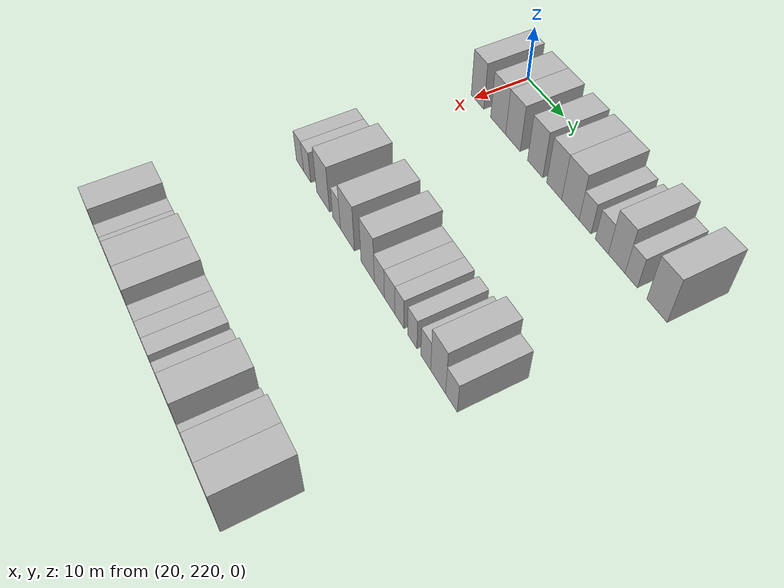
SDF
<sdf version="1.6">
 <world name="default">
  <model name="building_177">
   <static>1</static>
   <pose>25.0000 220.9204 0 0.000000 0.000000 0.000000</pose>
   <link name="link">
    <pose>0 0 4.50 0 0 0</pose>
    <collision name="collision"><geometry><box><size>10.0000 3.8029 9.0000</size></box></geometry></collision>
    <visual name="visual">
     <cast_shadows>0</cast_shadows>
     <geometry><box><size>10.0000 3.8029 9.0000</size></box></geometry>
     <material>
      <script>
       <uri>model://HANNAS_wall/materials/scripts</uri>
       <uri>model://HANNAS_wall/materials/textures</uri>
       <name>vrc/HANNAS_wall</name>
      </script>
     </material>
    </visual>
   </link>
  </model>
  <model name="building_178">
   <static>1</static>
   <pose>25.0000 226.9856 0 0.000000 0.000000 0.000000</pose>
   <link name="link">
    <pose>0 0 4.50 0 0 0</pose>
    <collision name="collision"><geometry><box><size>10.0000 4.3275 9.0000</size></box></geometry></collision>
    <visual name="visual">
     <cast_shadows>0</cast_shadows>
     <geometry><box><size>10.0000 4.3275 9.0000</size></box></geometry>
     <material>
      <script>
       <uri>model://HANNAS_wall/materials/scripts</uri>
       <uri>model://HANNAS_wall/materials/textures</uri>
       <name>vrc/HANNAS_wall</name>
      </script>
     </material>
    </visual>
   </link>
  </model>
  <model name="building_179">
   <static>1</static>
   <pose>25.0000 231.1897 0 0.000000 0.000000 0.000000</pose>
   <link name="link">
    <pose>0 0 4.50 0 0 0</pose>
    <collision name="collision"><geometry><box><size>10.0000 4.0806 9.0000</size></box></geometry></collision>
    <visual name="visual">
     <cast_shadows>0</cast_shadows>
     <geometry><box><size>10.0000 4.0806 9.0000</size></box></geometry>
     <material>
      <script>
       <uri>model://HANNAS_wall/materials/scripts</uri>
       <uri>model://HANNAS_wall/materials/textures</uri>
       <name>vrc/HANNAS_wall</name>
      </script>
     </material>
    </visual>
   </link>
  </model>
  <model name="building_180">
   <static>1</static>
   <pose>25.0000 237.2449 0 0.000000 0.000000 0.000000</pose>
   <link name="link">
    <pose>0 0 4.50 0 0 0</pose>
    <collision name="collision"><geometry><box><size>10.0000 4.0298 9.0000</size></box></geometry></collision>
    <visual name="visual">
     <cast_shadows>0</cast_shadows>
     <geometry><box><size>10.0000 4.0298 9.0000</size></box></geometry>
     <material>
      <script>
       <uri>model://HANNAS_wall/materials/scripts</uri>
       <uri>model://HANNAS_wall/materials/textures</uri>
       <name>vrc/HANNAS_wall</name>
      </script>
     </material>
    </visual>
   </link>
  </model>
  <model name="building_181">
   <static>1</static>
   <pose>25.0000 242.1710 0 0.000000 0.000000 0.000000</pose>
   <link name="link">
    <pose>0 0 4.50 0 0 0</pose>
    <collision name="collision"><geometry><box><size>10.0000 3.8224 9.0000</size></box></geometry></collision>
    <visual name="visual">
     <cast_shadows>0</cast_shadows>
     <geometry><box><size>10.0000 3.8224 9.0000</size></box></geometry>
     <material>
      <script>
       <uri>model://HANNAS_wall/materials/scripts</uri>
       <uri>model://HANNAS_wall/materials/textures</uri>
       <name>vrc/HANNAS_wall</name>
      </script>
     </material>
    </visual>
   </link>
  </model>
  <model name="building_182">
   <static>1</static>
   <pose>25.0000 246.2288 0 0.000000 0.000000 0.000000</pose>
   <link name="link">
    <pose>0 0 4.50 0 0 0</pose>
    <collision name="collision"><geometry><box><size>10.0000 4.2931 9.0000</size></box></geometry></collision>
    <visual name="visual">
     <cast_shadows>0</cast_shadows>
     <geometry><box><size>10.0000 4.2931 9.0000</size></box></geometry>
     <material>
      <script>
       <uri>model://HANNAS_wall/materials/scripts</uri>
       <uri>model://HANNAS_wall/materials/textures</uri>
       <name>vrc/HANNAS_wall</name>
      </script>
     </material>
    </visual>
   </link>
  </model>
  <model name="building_183">
   <static>1</static>
   <pose>25.0000 249.7904 0 0.000000 0.000000 0.000000</pose>
   <link name="link">
    <pose>0 0 3.00 0 0 0</pose>
    <collision name="collision"><geometry><box><size>10.0000 2.8302 6.0000</size></box></geometry></collision>
    <visual name="visual">
     <cast_shadows>0</cast_shadows>
     <geometry><box><size>10.0000 2.8302 6.0000</size></box></geometry>
     <material>
      <script>
       <uri>model://HANNAS_wall/materials/scripts</uri>
       <uri>model://HANNAS_wall/materials/textures</uri>
       <name>vrc/HANNAS_wall</name>
      </script>
     </material>
    </visual>
   </link>
  </model>
  <model name="building_184">
   <static>1</static>
   <pose>25.0000 253.6952 0 0.000000 0.000000 0.000000</pose>
   <link name="link">
    <pose>0 0 3.00 0 0 0</pose>
    <collision name="collision"><geometry><box><size>10.0000 2.9796 6.0000</size></box></geometry></collision>
    <visual name="visual">
     <cast_shadows>0</cast_shadows>
     <geometry><box><size>10.0000 2.9796 6.0000</size></box></geometry>
     <material>
      <script>
       <uri>model://HANNAS_wall/materials/scripts</uri>
       <uri>model://HANNAS_wall/materials/textures</uri>
       <name>vrc/HANNAS_wall</name>
      </script>
     </material>
    </visual>
   </link>
  </model>
  <model name="building_185">
   <static>1</static>
   <pose>25.0000 257.0476 0 0.000000 0.000000 0.000000</pose>
   <link name="link">
    <pose>0 0 4.50 0 0 0</pose>
    <collision name="collision"><geometry><box><size>10.0000 3.7251 9.0000</size></box></geometry></collision>
    <visual name="visual">
     <cast_shadows>0</cast_shadows>
     <geometry><box><size>10.0000 3.7251 9.0000</size></box></geometry>
     <material>
      <script>
       <uri>model://HANNAS_wall/materials/scripts</uri>
       <uri>model://HANNAS_wall/materials/textures</uri>
       <name>vrc/HANNAS_wall</name>
      </script>
     </material>
    </visual>
   </link>
  </model>
  <model name="building_186">
   <static>1</static>
   <pose>25.0000 260.2636 0 0.000000 0.000000 0.000000</pose>
   <link name="link">
    <pose>0 0 3.00 0 0 0</pose>
    <collision name="collision"><geometry><box><size>10.0000 2.7068 6.0000</size></box></geometry></collision>
    <visual name="visual">
     <cast_shadows>0</cast_shadows>
     <geometry><box><size>10.0000 2.7068 6.0000</size></box></geometry>
     <material>
      <script>
       <uri>model://HANNAS_wall/materials/scripts</uri>
       <uri>model://HANNAS_wall/materials/textures</uri>
       <name>vrc/HANNAS_wall</name>
      </script>
     </material>
    </visual>
   </link>
  </model>
  <model name="building_187">
   <static>1</static>
   <pose>25.0000 265.7108 0 0.000000 0.000000 0.000000</pose>
   <link name="link">
    <pose>0 0 4.50 0 0 0</pose>
    <collision name="collision"><geometry><box><size>10.0000 4.1877 9.0000</size></box></geometry></collision>
    <visual name="visual">
     <cast_shadows>0</cast_shadows>
     <geometry><box><size>10.0000 4.1877 9.0000</size></box></geometry>
     <material>
      <script>
       <uri>model://HANNAS_wall/materials/scripts</uri>
       <uri>model://HANNAS_wall/materials/textures</uri>
       <name>vrc/HANNAS_wall</name>
      </script>
     </material>
    </visual>
   </link>
  </model>
  <model name="building_417">
   <static>1</static>
   <pose>55.0000 220.5504 0 0.000000 0.000000 0.000000</pose>
   <link name="link">
    <pose>0 0 3.00 0 0 0</pose>
    <collision name="collision"><geometry><box><size>10.0000 2.5222 6.0000</size></box></geometry></collision>
    <visual name="visual">
     <cast_shadows>0</cast_shadows>
     <geometry><box><size>10.0000 2.5222 6.0000</size></box></geometry>
     <material>
      <script>
       <uri>model://HANNAS_wall/materials/scripts</uri>
       <uri>model://HANNAS_wall/materials/textures</uri>
       <name>vrc/HANNAS_wall</name>
      </script>
     </material>
    </visual>
   </link>
  </model>
  <model name="building_418">
   <static>1</static>
   <pose>55.0000 223.0967 0 0.000000 0.000000 0.000000</pose>
   <link name="link">
    <pose>0 0 3.00 0 0 0</pose>
    <collision name="collision"><geometry><box><size>10.0000 2.5703 6.0000</size></box></geometry></collision>
    <visual name="visual">
     <cast_shadows>0</cast_shadows>
     <geometry><box><size>10.0000 2.5703 6.0000</size></box></geometry>
     <material>
      <script>
       <uri>model://HANNAS_wall/materials/scripts</uri>
       <uri>model://HANNAS_wall/materials/textures</uri>
       <name>vrc/HANNAS_wall</name>
      </script>
     </material>
    </visual>
   </link>
  </model>
  <model name="building_419">
   <static>1</static>
   <pose>55.0000 228.5635 0 0.000000 0.000000 0.000000</pose>
   <link name="link">
    <pose>0 0 4.50 0 0 0</pose>
    <collision name="collision"><geometry><box><size>10.0000 4.3633 9.0000</size></box></geometry></collision>
    <visual name="visual">
     <cast_shadows>0</cast_shadows>
     <geometry><box><size>10.0000 4.3633 9.0000</size></box></geometry>
     <material>
      <script>
       <uri>model://HANNAS_wall/materials/scripts</uri>
       <uri>model://HANNAS_wall/materials/textures</uri>
       <name>vrc/HANNAS_wall</name>
      </script>
     </material>
    </visual>
   </link>
  </model>
  <model name="building_420">
   <static>1</static>
   <pose>55.0000 232.9952 0 0.000000 0.000000 0.000000</pose>
   <link name="link">
    <pose>0 0 3.00 0 0 0</pose>
    <collision name="collision"><geometry><box><size>10.0000 2.5002 6.0000</size></box></geometry></collision>
    <visual name="visual">
     <cast_shadows>0</cast_shadows>
     <geometry><box><size>10.0000 2.5002 6.0000</size></box></geometry>
     <material>
      <script>
       <uri>model://HANNAS_wall/materials/scripts</uri>
       <uri>model://HANNAS_wall/materials/textures</uri>
       <name>vrc/HANNAS_wall</name>
      </script>
     </material>
    </visual>
   </link>
  </model>
  <model name="building_421">
   <static>1</static>
   <pose>55.0000 236.4503 0 0.000000 0.000000 0.000000</pose>
   <link name="link">
    <pose>0 0 4.50 0 0 0</pose>
    <collision name="collision"><geometry><box><size>10.0000 4.4100 9.0000</size></box></geometry></collision>
    <visual name="visual">
     <cast_shadows>0</cast_shadows>
     <geometry><box><size>10.0000 4.4100 9.0000</size></box></geometry>
     <material>
      <script>
       <uri>model://HANNAS_wall/materials/scripts</uri>
       <uri>model://HANNAS_wall/materials/textures</uri>
       <name>vrc/HANNAS_wall</name>
      </script>
     </material>
    </visual>
   </link>
  </model>
  <model name="building_422">
   <static>1</static>
   <pose>55.0000 242.6285 0 0.000000 0.000000 0.000000</pose>
   <link name="link">
    <pose>0 0 4.50 0 0 0</pose>
    <collision name="collision"><geometry><box><size>10.0000 3.9464 9.0000</size></box></geometry></collision>
    <visual name="visual">
     <cast_shadows>0</cast_shadows>
     <geometry><box><size>10.0000 3.9464 9.0000</size></box></geometry>
     <material>
      <script>
       <uri>model://HANNAS_wall/materials/scripts</uri>
       <uri>model://HANNAS_wall/materials/textures</uri>
       <name>vrc/HANNAS_wall</name>
      </script>
     </material>
    </visual>
   </link>
  </model>
  <model name="building_423">
   <static>1</static>
   <pose>55.0000 246.0341 0 0.000000 0.000000 0.000000</pose>
   <link name="link">
    <pose>0 0 3.00 0 0 0</pose>
    <collision name="collision"><geometry><box><size>10.0000 2.8647 6.0000</size></box></geometry></collision>
    <visual name="visual">
     <cast_shadows>0</cast_shadows>
     <geometry><box><size>10.0000 2.8647 6.0000</size></box></geometry>
     <material>
      <script>
       <uri>model://HANNAS_wall/materials/scripts</uri>
       <uri>model://HANNAS_wall/materials/textures</uri>
       <name>vrc/HANNAS_wall</name>
      </script>
     </material>
    </visual>
   </link>
  </model>
  <model name="building_424">
   <static>1</static>
   <pose>55.0000 248.9469 0 0.000000 0.000000 0.000000</pose>
   <link name="link">
    <pose>0 0 3.00 0 0 0</pose>
    <collision name="collision"><geometry><box><size>10.0000 2.9608 6.0000</size></box></geometry></collision>
    <visual name="visual">
     <cast_shadows>0</cast_shadows>
     <geometry><box><size>10.0000 2.9608 6.0000</size></box></geometry>
     <material>
      <script>
       <uri>model://HANNAS_wall/materials/scripts</uri>
       <uri>model://HANNAS_wall/materials/textures</uri>
       <name>vrc/HANNAS_wall</name>
      </script>
     </material>
    </visual>
   </link>
  </model>
  <model name="building_425">
   <static>1</static>
   <pose>55.0000 251.6619 0 0.000000 0.000000 0.000000</pose>
   <link name="link">
    <pose>0 0 3.00 0 0 0</pose>
    <collision name="collision"><geometry><box><size>10.0000 2.4691 6.0000</size></box></geometry></collision>
    <visual name="visual">
     <cast_shadows>0</cast_shadows>
     <geometry><box><size>10.0000 2.4691 6.0000</size></box></geometry>
     <material>
      <script>
       <uri>model://HANNAS_wall/materials/scripts</uri>
       <uri>model://HANNAS_wall/materials/textures</uri>
       <name>vrc/HANNAS_wall</name>
      </script>
     </material>
    </visual>
   </link>
  </model>
  <model name="building_426">
   <static>1</static>
   <pose>55.0000 255.1031 0 0.000000 0.000000 0.000000</pose>
   <link name="link">
    <pose>0 0 3.00 0 0 0</pose>
    <collision name="collision"><geometry><box><size>10.0000 2.4134 6.0000</size></box></geometry></collision>
    <visual name="visual">
     <cast_shadows>0</cast_shadows>
     <geometry><box><size>10.0000 2.4134 6.0000</size></box></geometry>
     <material>
      <script>
       <uri>model://HANNAS_wall/materials/scripts</uri>
       <uri>model://HANNAS_wall/materials/textures</uri>
       <name>vrc/HANNAS_wall</name>
      </script>
     </material>
    </visual>
   </link>
  </model>
  <model name="building_427">
   <static>1</static>
   <pose>55.0000 258.5602 0 0.000000 0.000000 0.000000</pose>
   <link name="link">
    <pose>0 0 3.00 0 0 0</pose>
    <collision name="collision"><geometry><box><size>10.0000 2.5009 6.0000</size></box></geometry></collision>
    <visual name="visual">
     <cast_shadows>0</cast_shadows>
     <geometry><box><size>10.0000 2.5009 6.0000</size></box></geometry>
     <material>
      <script>
       <uri>model://HANNAS_wall/materials/scripts</uri>
       <uri>model://HANNAS_wall/materials/textures</uri>
       <name>vrc/HANNAS_wall</name>
      </script>
     </material>
    </visual>
   </link>
  </model>
  <model name="building_428">
   <static>1</static>
   <pose>55.0000 261.6528 0 0.000000 0.000000 0.000000</pose>
   <link name="link">
    <pose>0 0 4.50 0 0 0</pose>
    <collision name="collision"><geometry><box><size>10.0000 3.6841 9.0000</size></box></geometry></collision>
    <visual name="visual">
     <cast_shadows>0</cast_shadows>
     <geometry><box><size>10.0000 3.6841 9.0000</size></box></geometry>
     <material>
      <script>
       <uri>model://HANNAS_wall/materials/scripts</uri>
       <uri>model://HANNAS_wall/materials/textures</uri>
       <name>vrc/HANNAS_wall</name>
      </script>
     </material>
    </visual>
   </link>
  </model>
  <model name="building_429">
   <static>1</static>
   <pose>55.0000 264.8965 0 0.000000 0.000000 0.000000</pose>
   <link name="link">
    <pose>0 0 3.00 0 0 0</pose>
    <collision name="collision"><geometry><box><size>10.0000 2.8034 6.0000</size></box></geometry></collision>
    <visual name="visual">
     <cast_shadows>0</cast_shadows>
     <geometry><box><size>10.0000 2.8034 6.0000</size></box></geometry>
     <material>
      <script>
       <uri>model://HANNAS_wall/materials/scripts</uri>
       <uri>model://HANNAS_wall/materials/textures</uri>
       <name>vrc/HANNAS_wall</name>
      </script>
     </material>
    </visual>
   </link>
  </model>
  <model name="building_655">
   <static>1</static>
   <pose>85.0000 220.9758 0 0.000000 0.000000 0.000000</pose>
   <link name="link">
    <pose>0 0 4.50 0 0 0</pose>
    <collision name="collision"><geometry><box><size>10.0000 4.3943 9.0000</size></box></geometry></collision>
    <visual name="visual">
     <cast_shadows>0</cast_shadows>
     <geometry><box><size>10.0000 4.3943 9.0000</size></box></geometry>
     <material>
      <script>
       <uri>model://HANNAS_wall/materials/scripts</uri>
       <uri>model://HANNAS_wall/materials/textures</uri>
       <name>vrc/HANNAS_wall</name>
      </script>
     </material>
    </visual>
   </link>
  </model>
  <model name="building_656">
   <static>1</static>
   <pose>85.0000 224.3748 0 0.000000 0.000000 0.000000</pose>
   <link name="link">
    <pose>0 0 3.00 0 0 0</pose>
    <collision name="collision"><geometry><box><size>10.0000 2.4038 6.0000</size></box></geometry></collision>
    <visual name="visual">
     <cast_shadows>0</cast_shadows>
     <geometry><box><size>10.0000 2.4038 6.0000</size></box></geometry>
     <material>
      <script>
       <uri>model://HANNAS_wall/materials/scripts</uri>
       <uri>model://HANNAS_wall/materials/textures</uri>
       <name>vrc/HANNAS_wall</name>
      </script>
     </material>
    </visual>
   </link>
  </model>
  <model name="building_657">
   <static>1</static>
   <pose>85.0000 226.8430 0 0.000000 0.000000 0.000000</pose>
   <link name="link">
    <pose>0 0 3.00 0 0 0</pose>
    <collision name="collision"><geometry><box><size>10.0000 2.5325 6.0000</size></box></geometry></collision>
    <visual name="visual">
     <cast_shadows>0</cast_shadows>
     <geometry><box><size>10.0000 2.5325 6.0000</size></box></geometry>
     <material>
      <script>
       <uri>model://HANNAS_wall/materials/scripts</uri>
       <uri>model://HANNAS_wall/materials/textures</uri>
       <name>vrc/HANNAS_wall</name>
      </script>
     </material>
    </visual>
   </link>
  </model>
  <model name="building_658">
   <static>1</static>
   <pose>85.0000 231.3096 0 0.000000 0.000000 0.000000</pose>
   <link name="link">
    <pose>0 0 4.50 0 0 0</pose>
    <collision name="collision"><geometry><box><size>10.0000 4.4006 9.0000</size></box></geometry></collision>
    <visual name="visual">
     <cast_shadows>0</cast_shadows>
     <geometry><box><size>10.0000 4.4006 9.0000</size></box></geometry>
     <material>
      <script>
       <uri>model://HANNAS_wall/materials/scripts</uri>
       <uri>model://HANNAS_wall/materials/textures</uri>
       <name>vrc/HANNAS_wall</name>
      </script>
     </material>
    </visual>
   </link>
  </model>
  <model name="building_659">
   <static>1</static>
   <pose>85.0000 235.5748 0 0.000000 0.000000 0.000000</pose>
   <link name="link">
    <pose>0 0 4.50 0 0 0</pose>
    <collision name="collision"><geometry><box><size>10.0000 4.1298 9.0000</size></box></geometry></collision>
    <visual name="visual">
     <cast_shadows>0</cast_shadows>
     <geometry><box><size>10.0000 4.1298 9.0000</size></box></geometry>
     <material>
      <script>
       <uri>model://HANNAS_wall/materials/scripts</uri>
       <uri>model://HANNAS_wall/materials/textures</uri>
       <name>vrc/HANNAS_wall</name>
      </script>
     </material>
    </visual>
   </link>
  </model>
  <model name="building_660">
   <static>1</static>
   <pose>85.0000 238.9903 0 0.000000 0.000000 0.000000</pose>
   <link name="link">
    <pose>0 0 3.00 0 0 0</pose>
    <collision name="collision"><geometry><box><size>10.0000 2.7012 6.0000</size></box></geometry></collision>
    <visual name="visual">
     <cast_shadows>0</cast_shadows>
     <geometry><box><size>10.0000 2.7012 6.0000</size></box></geometry>
     <material>
      <script>
       <uri>model://HANNAS_wall/materials/scripts</uri>
       <uri>model://HANNAS_wall/materials/textures</uri>
       <name>vrc/HANNAS_wall</name>
      </script>
     </material>
    </visual>
   </link>
  </model>
  <model name="building_661">
   <static>1</static>
   <pose>85.0000 241.6601 0 0.000000 0.000000 0.000000</pose>
   <link name="link">
    <pose>0 0 3.00 0 0 0</pose>
    <collision name="collision"><geometry><box><size>10.0000 2.6384 6.0000</size></box></geometry></collision>
    <visual name="visual">
     <cast_shadows>0</cast_shadows>
     <geometry><box><size>10.0000 2.6384 6.0000</size></box></geometry>
     <material>
      <script>
       <uri>model://HANNAS_wall/materials/scripts</uri>
       <uri>model://HANNAS_wall/materials/textures</uri>
       <name>vrc/HANNAS_wall</name>
      </script>
     </material>
    </visual>
   </link>
  </model>
  <model name="building_662">
   <static>1</static>
   <pose>85.0000 244.3725 0 0.000000 0.000000 0.000000</pose>
   <link name="link">
    <pose>0 0 3.00 0 0 0</pose>
    <collision name="collision"><geometry><box><size>10.0000 2.7863 6.0000</size></box></geometry></collision>
    <visual name="visual">
     <cast_shadows>0</cast_shadows>
     <geometry><box><size>10.0000 2.7863 6.0000</size></box></geometry>
     <material>
      <script>
       <uri>model://HANNAS_wall/materials/scripts</uri>
       <uri>model://HANNAS_wall/materials/textures</uri>
       <name>vrc/HANNAS_wall</name>
      </script>
     </material>
    </visual>
   </link>
  </model>
  <model name="building_663">
   <static>1</static>
   <pose>85.0000 248.1005 0 0.000000 0.000000 0.000000</pose>
   <link name="link">
    <pose>0 0 3.00 0 0 0</pose>
    <collision name="collision"><geometry><box><size>10.0000 2.6698 6.0000</size></box></geometry></collision>
    <visual name="visual">
     <cast_shadows>0</cast_shadows>
     <geometry><box><size>10.0000 2.6698 6.0000</size></box></geometry>
     <material>
      <script>
       <uri>model://HANNAS_wall/materials/scripts</uri>
       <uri>model://HANNAS_wall/materials/textures</uri>
       <name>vrc/HANNAS_wall</name>
      </script>
     </material>
    </visual>
   </link>
  </model>
  <model name="building_664">
   <static>1</static>
   <pose>85.0000 252.6368 0 0.000000 0.000000 0.000000</pose>
   <link name="link">
    <pose>0 0 4.50 0 0 0</pose>
    <collision name="collision"><geometry><box><size>10.0000 4.4028 9.0000</size></box></geometry></collision>
    <visual name="visual">
     <cast_shadows>0</cast_shadows>
     <geometry><box><size>10.0000 4.4028 9.0000</size></box></geometry>
     <material>
      <script>
       <uri>model://HANNAS_wall/materials/scripts</uri>
       <uri>model://HANNAS_wall/materials/textures</uri>
       <name>vrc/HANNAS_wall</name>
      </script>
     </material>
    </visual>
   </link>
  </model>
  <model name="building_665">
   <static>1</static>
   <pose>85.0000 257.2654 0 0.000000 0.000000 0.000000</pose>
   <link name="link">
    <pose>0 0 3.00 0 0 0</pose>
    <collision name="collision"><geometry><box><size>10.0000 2.8544 6.0000</size></box></geometry></collision>
    <visual name="visual">
     <cast_shadows>0</cast_shadows>
     <geometry><box><size>10.0000 2.8544 6.0000</size></box></geometry>
     <material>
      <script>
       <uri>model://HANNAS_wall/materials/scripts</uri>
       <uri>model://HANNAS_wall/materials/textures</uri>
       <name>vrc/HANNAS_wall</name>
      </script>
     </material>
    </visual>
   </link>
  </model>
  <model name="building_666">
   <static>1</static>
   <pose>85.0000 260.6470 0 0.000000 0.000000 0.000000</pose>
   <link name="link">
    <pose>0 0 4.50 0 0 0</pose>
    <collision name="collision"><geometry><box><size>10.0000 3.9089 9.0000</size></box></geometry></collision>
    <visual name="visual">
     <cast_shadows>0</cast_shadows>
     <geometry><box><size>10.0000 3.9089 9.0000</size></box></geometry>
     <material>
      <script>
       <uri>model://HANNAS_wall/materials/scripts</uri>
       <uri>model://HANNAS_wall/materials/textures</uri>
       <name>vrc/HANNAS_wall</name>
      </script>
     </material>
    </visual>
   </link>
  </model>
  <model name="building_667">
   <static>1</static>
   <pose>85.0000 264.7070 0 0.000000 0.000000 0.000000</pose>
   <link name="link">
    <pose>0 0 4.50 0 0 0</pose>
    <collision name="collision"><geometry><box><size>10.0000 4.2112 9.0000</size></box></geometry></collision>
    <visual name="visual">
     <cast_shadows>0</cast_shadows>
     <geometry><box><size>10.0000 4.2112 9.0000</size></box></geometry>
     <material>
      <script>
       <uri>model://HANNAS_wall/materials/scripts</uri>
       <uri>model://HANNAS_wall/materials/textures</uri>
       <name>vrc/HANNAS_wall</name>
      </script>
     </material>
    </visual>
   </link>
  </model>
 </world>
</sdf>
